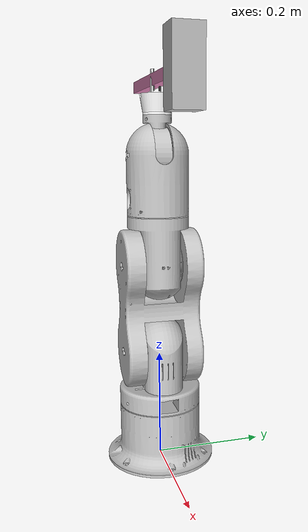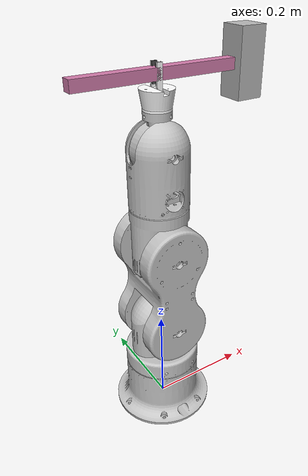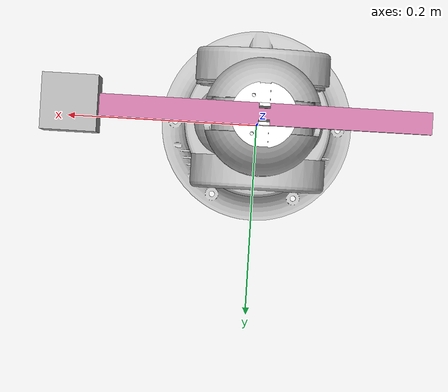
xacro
<?xml version="1.0"?>
<!-- Author: Emanuel Fallas Hernandez efallashdez@gmail.com -->
<!-- Published under GNU GPLv3 license -->

<!-- This xacro generates a standalone thor robot arm fixed to the world, with a load fixed to its gripper-->
<robot name="thor" xmlns:xacro="http://www.ros.org/wiki/xacro">
  <xacro:arg name="prefix" default="thor_"/>

  <!-- Load URDF XACRO -->
  <xacro:include filename="$(find thor_description)/urdf/thor_description.urdf.xacro"/>

  <!-- Generate URDF macro-->
  <xacro:macro name="generate_urdf" params="prefix">
    <xacro:thor_robot prefix="${prefix}"/>
    <!--xacro:thor_robot prefix="thor_"/-->
    <link name="world" />

    <joint name="base_to_world" type="fixed">
      <parent link="world"/>
      <child link="${prefix}base_link"/>
    </joint>

    <link name ='bar_link'>
      <inertial>
        <mass value="0.5"/>
        <inertia
          ixx="3.766666E-3"
          ixy="0"
          ixz="0"
          iyy="3.766666E-3"
          iyz="0"
          izz="3.333333E-5"/>
      </inertial>
      <collision name="collision">
        <geometry>
          <box size="0.02 0.02 0.3"/>
        </geometry>
      </collision>
      <visual name="visual">
        <geometry>
          <box size="0.02 0.02 0.3"/>
        </geometry>
      </visual>
    </link>

    <joint name="bar_to_gripper" type="fixed">
      <parent link="${prefix}gripper_link"/>
      <child link="bar_link"/>
    </joint>

    <link name ='mjolnir_link'>
      <visual name="visual">
        <geometry>
          <box size="0.12 0.05 0.05"/>
        </geometry>
      </visual>
    </link>

    <joint name="bar_to_mjolnir" type="fixed">
      <parent link="bar_link"/>
      <child link="mjolnir_link"/>
      <origin xyz="0 0 0.1725" />
    </joint>

  <!-- Gazebo -->

    <gazebo>
        <plugin name="gazebo_ros_control" filename="libgazebo_ros_control.so"/>
    </gazebo>

  </xacro:macro>

  <!--Runs the macro that generates the URDF -->
  <xacro:generate_urdf prefix="$(arg prefix)"/>

</robot>

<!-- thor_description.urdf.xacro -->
<!-- Modified by: Emanuel Fallas Hernandez efallashdez@gmail.com -->
<!-- Published under GNU GPLv3 license -->

<!-- This xacro generates a Thor robot arm that can be duplicated by using a prefix -->

<robot xmlns:xacro="http://wiki.ros.org/xacro">
  <xacro:property name="damping" value="0.01" /> <!-- Joint Damping -->
  <xacro:property name="effort_limit" value="100" />  <!-- Maximum Torque -->
  <xacro:property name="velocity_limit" value="10" />  <!-- Maximum Joint Velocity -->

  <!-- MAIN MACRO: Generates the URDF of the THOR Robot-->
  <xacro:macro name="thor_robot" params="prefix">
    <!-- Import Transmission xacro file-->
    <xacro:include filename="$(find thor_description)/urdf/transmission.xacro"/>
    <!-- Import gripper xacro file-->
    <xacro:include filename="$(find gripper_description)/urdf/gripper.urdf.xacro"/>

    <!-- ROBOT DESCRIPTION -->
    <link
      name="${prefix}base_link">
       <inertial>
        <origin
          xyz="0.00056197 0.013471 0.041559"
          rpy="0 0 0" />
        <mass
          value="1.0688" />
        <inertia
          ixx="0.0019613"
          ixy="-4.7842E-05"
          ixz="-6.271E-06"
          iyy="0.0020501"
          iyz="-5.642E-06"
          izz="0.0035819" />
      </inertial>
      <visual>
        <origin
          xyz="0 0 0"
          rpy="0 0 0" />
        <geometry>
          <mesh
            filename="package://thor_description/meshes/base_link.STL" />
        </geometry>
        <material
          name="dirty_white">
          <color
            rgba="0.75294 0.75294 0.75294 1" />
        </material>
      </visual>
      <collision>
        <origin
          xyz="0 0 0"
          rpy="0 0 0" />
        <geometry>
          <mesh
            filename="package://thor_description/meshes/simple/base_link.STL" />
        </geometry>
      </collision>
    </link>
    <link
      name="${prefix}Art1_Link">
      <inertial>
        <origin
          xyz="-1.3666E-06 0.00093142 0.099601"
          rpy="0 0 0" />
        <mass
          value="2.4665" />
        <inertia
          ixx="0.0025936"
          ixy="-4.8798E-08"
          ixz="-5.6727E-08"
          iyy="0.0025377"
          iyz="8.201E-06"
          izz="0.0032738" />
      </inertial>
      <visual>
        <origin
          xyz="0 0 0"
          rpy="0 0 0" />
        <geometry>
          <mesh
            filename="package://thor_description/meshes/Art1_Link.STL" />
        </geometry>
        <material name="dirty_white"/>
      </visual>
      <collision>
        <origin
          xyz="0 0 0.058"
          rpy="0 0 0" />
        <geometry>
          <mesh
            filename="package://thor_description/meshes/simple/Art1_Link.STL" />
        </geometry>
      </collision>
    </link>
    <joint
      name="${prefix}Art1_Yaw"
      type="revolute">
      <origin
        xyz="0 0 0.05"
        rpy="0 0 0" />
      <parent
        link="${prefix}base_link" />
      <child
        link="${prefix}Art1_Link" />
      <axis
        xyz="0 0 1" />

      <limit
        lower="-1.5708"
        upper="1.5708"
        effort="${effort_limit}"
        velocity="${velocity_limit}" />
      <dynamics damping="${damping}"/>
    </joint>
    <link
      name="${prefix}Art2_Link">
      <inertial>
        <origin
          xyz="-1.353E-07 0.0049542 0.087169"
          rpy="0 0 0" />
        <mass
          value="0.73847" />
        <inertia
          ixx="0.004243"
          ixy="-2.7476E-09"
          ixz="-7.4552E-07"
          iyy="0.0050775"
          iyz="-2.8558E-05"
          izz="0.00099157" />
      </inertial>
      <visual>
        <origin
          xyz="0 0 0"
          rpy="0 0 0" />
        <geometry>
          <mesh
            filename="package://thor_description/meshes/Art2_Link.STL" />
        </geometry>
        <material name="dirty_white"/>
      </visual>
      <collision>
        <origin
          xyz="0 0 0"
          rpy="0 0 0" />
        <geometry>
          <mesh
            filename="package://thor_description/meshes/simple/Art2_Link.STL" />
        </geometry>
      </collision>
    </link>
    <joint
      name="${prefix}Art2_Pitch"
      type="revolute">
      <origin
        xyz="0 0 0.16"
        rpy="0 0 0" />
      <parent
        link="${prefix}Art1_Link" />
      <child
        link="${prefix}Art2_Link" />
      <axis
        xyz="0 1 0" />
      <limit
        lower="-1.5708"
        upper="1.5708"
        effort="${effort_limit}"
        velocity="${velocity_limit}" />
      <dynamics damping="${damping}"/>
    </joint>
    <link
      name="${prefix}Art3_Link">
      <inertial>
        <origin
          xyz="0.010261 0.0041361 0.0039446"
          rpy="0 0 0" />
        <mass
          value="0.58805" />
        <inertia
          ixx="0.00099386"
          ixy="1.5219E-07"
          ixz="-1.0434E-06"
          iyy="0.0010994"
          iyz="7.4526E-07"
          izz="0.00064781" />
      </inertial>
      <visual>
        <origin
          xyz="0 0 0"
          rpy="0 0 0" />
        <geometry>
          <mesh
            filename="package://thor_description/meshes/Art3_Link.STL" />
        </geometry>
        <material name="dirty_white"/>
      </visual>
      <collision>
        <origin
          xyz="0 0 0"
          rpy="0 0 0" />
        <geometry>
          <mesh
            filename="package://thor_description/meshes/simple/Art3_Link.STL" />
        </geometry>
      </collision>
    </link>
    <joint
      name="${prefix}Art3_Pitch"
      type="revolute">
      <origin
        xyz="0 0 0.16"
        rpy="0 0 0" />
      <parent
        link="${prefix}Art2_Link" />
      <child
        link="${prefix}Art3_Link" />
      <axis
        xyz="0 1 0" />
      <limit
        lower="-1.5708"
        upper="1.5708"
        effort="${effort_limit}"
        velocity="${velocity_limit}" />
      <dynamics damping="${damping}"/>
    </joint>
    <link
      name="${prefix}Art4_Link">
      <inertial>
        <origin
          xyz="-0.00039813 6.4745E-07 0.10813"
          rpy="0 0 0" />
        <mass
          value="0.82094" />
        <inertia
          ixx="0.00090847"
          ixy="1.0513E-08"
          ixz="-2.3376E-07"
          iyy="0.00092163"
          iyz="1.2665E-09"
          izz="0.00079862" />
      </inertial>
      <visual>
        <origin
          xyz="0 0 0"
          rpy="0 0 0" />
        <geometry>
          <mesh
            filename="package://thor_description/meshes/Art4_Link.STL" />
        </geometry>
        <material name="dirty_white"/>
      </visual>
      <collision>
        <origin
          xyz="0 0 0.079"
          rpy="0 0 0" />
        <geometry>
          <mesh
            filename="package://thor_description/meshes/simple/Art4_Link.STL" />
        </geometry>
      </collision>
    </link>
    <joint
      name="${prefix}Art4_Yaw"
      type="revolute">
      <origin
        xyz="0 0 0.0155"
        rpy="0 0 0" />
      <parent
        link="${prefix}Art3_Link" />
      <child
        link="${prefix}Art4_Link" />
      <axis
        xyz="0 0 1" />
      <limit
        lower="-2.094"
        upper="2.094"
        effort="${effort_limit}"
        velocity="${velocity_limit}" />
      <dynamics damping="${damping}"/>
    </joint>
    <link
      name="${prefix}Art5_Link">
      <inertial>
        <origin
          xyz="-4.0923E-08 -0.00012303 -0.0033641"
          rpy="0 0 0" />
        <mass
          value="0.02825" />
        <inertia
          ixx="1.6947E-05"
          ixy="-4.264E-12"
          ixz="3.8862E-11"
          iyy="3.744E-05"
          iyz="1.0145E-08"
          izz="2.3314E-05" />
      </inertial>
      <visual>
        <origin
          xyz="0 0 0"
          rpy="0 0 0" />
        <geometry>
          <mesh
            filename="package://thor_description/meshes/Art5_Link.STL" />
        </geometry>
        <material name="dirty_white"/>
      </visual>
      <collision>
        <origin
          xyz="0 0 0"
          rpy="0 0 0" />
        <geometry>
          <mesh
            filename="package://thor_description/meshes/simple/Art5_Link.STL" />
        </geometry>
      </collision>
    </link>
    <joint
      name="${prefix}Art5_Pitch"
      type="revolute">
      <origin
        xyz="0 0 0.1795"
        rpy="0 0 0" />
      <parent
        link="${prefix}Art4_Link" />
      <child
        link="${prefix}Art5_Link" />
      <axis
        xyz="0 1 0" />
      <limit
        lower="-1.5708"
        upper="1.5708"
        effort="${effort_limit}"
        velocity="${velocity_limit}" />
      <dynamics damping="${damping}"/>
    </joint>
    <link
      name="${prefix}Art6_Link">
      <inertial>
        <origin
          xyz="3.1604E-09 2.9499E-09 -0.02836"
          rpy="0 0 0" />
        <mass
          value="0.06043" />
        <inertia
          ixx="2.2364E-05"
          ixy="1.996E-13"
          ixz="5.6318E-14"
          iyy="2.2364E-05"
          iyz="2.6381E-12"
          izz="2.5324E-05" />
      </inertial>
      <visual>
        <origin
          xyz="0 0 0"
          rpy="0 0 0" />
        <geometry>
          <mesh
            filename="package://thor_description/meshes/Art6_Link.STL" />
        </geometry>
        <material name="dirty_white"/>
      </visual>
      <collision>
        <origin
          xyz="0 0 0"
          rpy="0 0 0" />
        <geometry>
          <mesh
            filename="package://thor_description/meshes/simple/Art6_Link.STL" />
        </geometry>
      </collision>
    </link>
    <joint
      name="${prefix}Art6_Yaw"
      type="continuous">
      <origin
        xyz="0 0 0.06715"
        rpy="0 0 0" />
      <parent
        link="${prefix}Art5_Link" />
      <child
        link="${prefix}Art6_Link" />
      <axis
        xyz="0 0 1" />
      <dynamics damping="${damping}"/>
      <limit
        effort="${effort_limit}"
        velocity="${velocity_limit}" />
    </joint>

    <!-- Import gripper from xacro file -->
    <xacro:gripper prefix="${prefix}"/>
    <joint name="${prefix}gripper_to_arm" type="fixed">
      <parent link="${prefix}Art6_Link"/>
      <child link="${prefix}gripper_base" />
    </joint>

    <!-- Set transmissions from xacro file -->
    <xacro:thor_transmission prefix="${prefix}"/>

  </xacro:macro>

</robot>

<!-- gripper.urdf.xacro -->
<!-- Modified by: Emanuel Fallas Hernandez efallashdez@gmail.com -->
<!-- Published under GNU GPLv3 license -->

<!-- This xacro generates a simple parallel gripper that can be duplicated by using a prefix -->

<robot
  xmlns:xacro="http://wiki.ros.org/xacro">

  <!-- MAIN MACRO: Generates the URDF of the gripper-->
  <xacro:macro name="gripper" params="prefix">
    <!--File with gazebo configuration-->
    <xacro:include filename="$(find gripper_description)/urdf/gripper.gazebo"/>
    <!-- Import Transmission xacro file-->
    <xacro:include filename="$(find gripper_description)/urdf/transmission.xacro"/>
    <xacro:property name="effort_gripper" value="100" />
    <xacro:property name="velocity_gripper" value="0.1" />
    <xacro:property name="damping_gripper" value="0.1" />

    <link
      name="${prefix}gripper_base">
      <inertial>
        <origin
          xyz="-9.4786E-19 6.9421E-19 0.002"
          rpy="0 0 0" />
        <mass
          value="0.0078999" />
        <inertia
          ixx="1.24E-06"
          ixy="-1.0813E-22"
          ixz="1.2359E-25"
          iyy="1.24E-06"
          iyz="8.2395E-26"
          izz="2.4588E-06" />
      </inertial>
      <visual>
        <origin
          xyz="0 0 0"
          rpy="0 0 0" />
        <geometry>
          <mesh
            filename="package://gripper_description/meshes/base_link.STL" />
        </geometry>
        <material
          name="">
          <color
            rgba="1 1 1 1" />
        </material>
      </visual>
      <collision>
        <origin
          xyz="0 0 0"
          rpy="0 0 0" />
        <geometry>
          <mesh
            filename="package://gripper_description/meshes/base_link.STL" />
        </geometry>
      </collision>
    </link>
    <link
      name="${prefix}gripper_link">
      <inertial>
        <origin
          xyz="-0.037682 4.5614E-19 -3.4273E-18"
          rpy="0 0 0" />
        <mass
          value="0.069862" />
        <inertia
          ixx="2.6995E-05"
          ixy="1.1307E-21"
          ixz="-6.5874E-22"
          iyy="1.9395E-05"
          iyz="6.5987E-22"
          izz="1.8235E-05" />
      </inertial>
      <visual>
        <origin
          xyz="0 0 0"
          rpy="0 0 0" />
        <geometry>
          <mesh
            filename="package://gripper_description/meshes/gripper_link.STL" />
        </geometry>
        <material
          name="">
          <color
            rgba="1 1 1 1" />
        </material>
      </visual>
      <collision>
        <origin
          xyz="0 0 0"
          rpy="0 0 0" />
        <geometry>
          <mesh
            filename="package://gripper_description/meshes/gripper_link.STL" />
        </geometry>
      </collision>
    </link>
    <joint
      name="${prefix}gripper_to_base"
      type="fixed">
      <origin
        xyz="0 0 0.0575"
        rpy="3.1416 -1.5708 0" />
      <parent
        link="${prefix}gripper_base" />
      <child
        link="${prefix}gripper_link" />
      <axis
        xyz="0 0 0" />
    </joint>
    <link
      name="${prefix}finger1_link">
      <inertial>
        <origin
          xyz="7.0493E-20 -0.0072105 0.018342"
          rpy="0 0 0" />
        <mass
          value="0.001938" />
        <inertia
          ixx="4.2754E-07"
          ixy="2.345E-24"
          ixz="-5.1128E-24"
          iyy="4.313E-07"
          iyz="3.709E-08"
          izz="2.8542E-08" />
      </inertial>
      <visual>
        <origin
          xyz="0 0 0"
          rpy="0 0 0" />
        <geometry>
          <mesh
            filename="package://gripper_description/meshes/finger1_link.STL" />
        </geometry>
        <material
          name="">
          <color
            rgba="1 1 1 1" />
        </material>
      </visual>
      <collision>
        <origin
          xyz="0 0 0"
          rpy="0 0 0" />
        <geometry>
          <mesh
            filename="package://gripper_description/meshes/finger1_link.STL" />
        </geometry>
      </collision>
    </link>
    <joint
      name="${prefix}finger1_prismatic"
      type="prismatic">
      <origin
        xyz="-0.0295 0 0"
        rpy="0 1.5708 0" />
      <parent
        link="${prefix}gripper_link" />
      <child
        link="${prefix}finger1_link" />
      <axis
        xyz="0 -1 0" />
      <limit
        lower="0"
        upper="0.02"
        effort="${effort_gripper}"
        velocity="${velocity_gripper}" />
      <dynamics
        damping="${damping_gripper}" />
    </joint>
    <link
      name="${prefix}rubber1">
      <inertial>
        <origin
          xyz="8.0461E-19 6.9389E-18 0.001"
          rpy="0 0 0" />
        <mass
          value="0.00081144" />
        <inertia
          ixx="8.3105E-08"
          ixy="9.6119E-24"
          ixz="6.5605E-25"
          iyy="7.0325E-09"
          iyz="-5.909E-25"
          izz="8.9597E-08" />
      </inertial>
      <visual>
        <origin
          xyz="0 0 0"
          rpy="0 0 0" />
        <geometry>
          <mesh
            filename="package://gripper_description/meshes/rubber1.STL" />
        </geometry>
        <material
          name="">
          <color
            rgba="0.29804 0.29804 0.29804 1" />
        </material>
      </visual>
      <collision>
        <origin
          xyz="0 0 0"
          rpy="0 0 0" />
        <geometry>
          <mesh
            filename="package://gripper_description/meshes/rubber1.STL" />
        </geometry>
      </collision>
    </link>
    <joint
      name="${prefix}rubber1_to_finger"
      type="fixed">
      <origin
        xyz="0 -0.007 0.0295"
        rpy="1.5708 0 3.1416" />
      <parent
        link="${prefix}finger1_link" />
      <child
        link="${prefix}rubber1" />
      <axis
        xyz="0 0 0" />
    </joint>
    <link
      name="${prefix}finger2_link">
      <inertial>
        <origin
          xyz="1.2534E-18 0.0072105 0.018342"
          rpy="0 0 0" />
        <mass
          value="0.001938" />
        <inertia
          ixx="4.2754E-07"
          ixy="8.649E-25"
          ixz="1.4886E-23"
          iyy="4.313E-07"
          iyz="-3.709E-08"
          izz="2.8542E-08" />
      </inertial>
      <visual>
        <origin
          xyz="0 0 0"
          rpy="0 0 0" />
        <geometry>
          <mesh
            filename="package://gripper_description/meshes/finger2_link.STL" />
        </geometry>
        <material
          name="">
          <color
            rgba="1 1 1 1" />
        </material>
      </visual>
      <collision>
        <origin
          xyz="0 0 0"
          rpy="0 0 0" />
        <geometry>
          <mesh
            filename="package://gripper_description/meshes/finger2_link.STL" />
        </geometry>
      </collision>
    </link>
    <joint
      name="${prefix}finger2_prismatic"
      type="prismatic">
      <origin
        xyz="-0.0295 0 0"
        rpy="0 1.5708 0" />
      <parent
        link="${prefix}gripper_link" />
      <child
        link="${prefix}finger2_link" />
      <axis
        xyz="0 1 0" />
      <limit
        lower="0"
        upper="0.02"
        effort="${effort_gripper}"
        velocity="${velocity_gripper}" />
      <dynamics
        damping="${damping_gripper}" />
    </joint>
    <link
      name="${prefix}rubber2">
      <inertial>
        <origin
          xyz="-2.57E-11 -6.9389E-18 0.001"
          rpy="0 0 0" />
        <mass
          value="0.00081144" />
        <inertia
          ixx="8.3105E-08"
          ixy="-1.9801E-24"
          ixz="-1.6683E-16"
          iyy="7.0325E-09"
          iyz="-2.3755E-25"
          izz="8.9596E-08" />
      </inertial>
      <visual>
        <origin
          xyz="0 0 0"
          rpy="0 0 0" />
        <geometry>
          <mesh
            filename="package://gripper_description/meshes/rubber2.STL" />
        </geometry>
        <material
          name="">
          <color
            rgba="0.29804 0.29804 0.29804 1" />
        </material>
      </visual>
      <collision>
        <origin
          xyz="0 0 0"
          rpy="0 0 0" />
        <geometry>
          <mesh
            filename="package://gripper_description/meshes/rubber2.STL" />
        </geometry>
      </collision>
    </link>
    <joint
      name="${prefix}rubber2_to_finger"
      type="fixed">
      <origin
        xyz="0 0.007 0.0295"
        rpy="1.5708 0 0" />
      <parent
        link="${prefix}finger2_link" />
      <child
        link="${prefix}rubber2" />
      <axis
        xyz="0 0 0" />
      <limit
        lower="-0.001"
        effort="0"
        velocity="0" />
    </joint>

    <!-- Load gazebo configuration-->
    <xacro:gazebo_config prefix="${prefix}"/>
    <!-- Set transmissions from xacro file -->
    <xacro:gripper_transmission prefix="${prefix}"/>

  </xacro:macro>
</robot>
